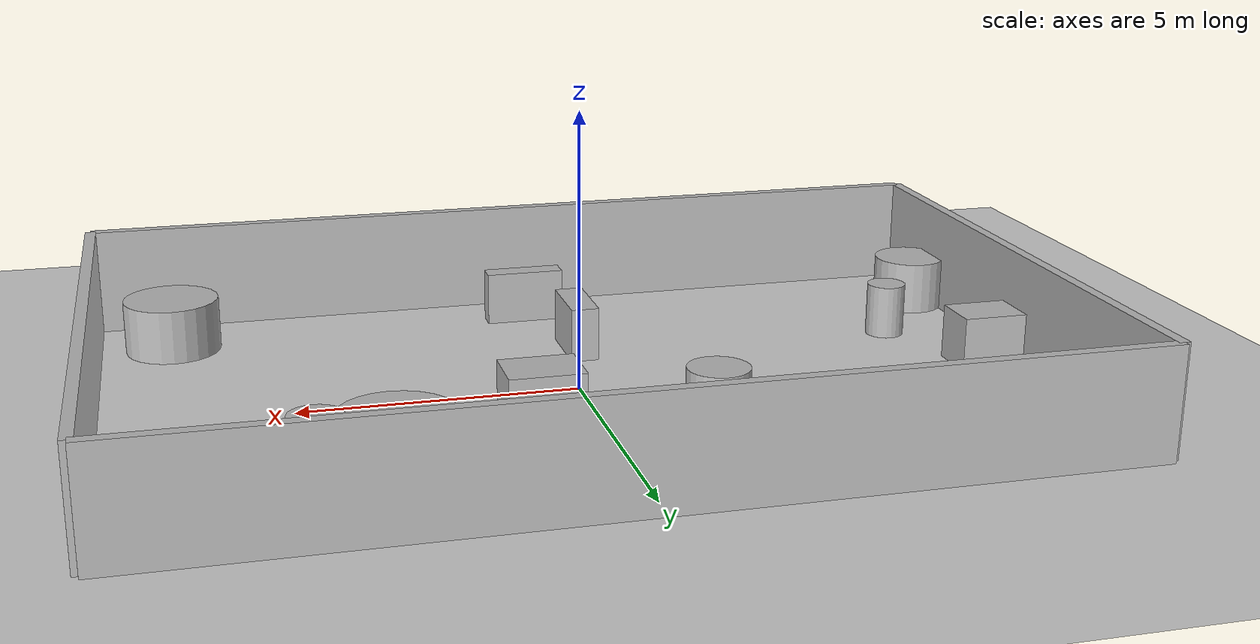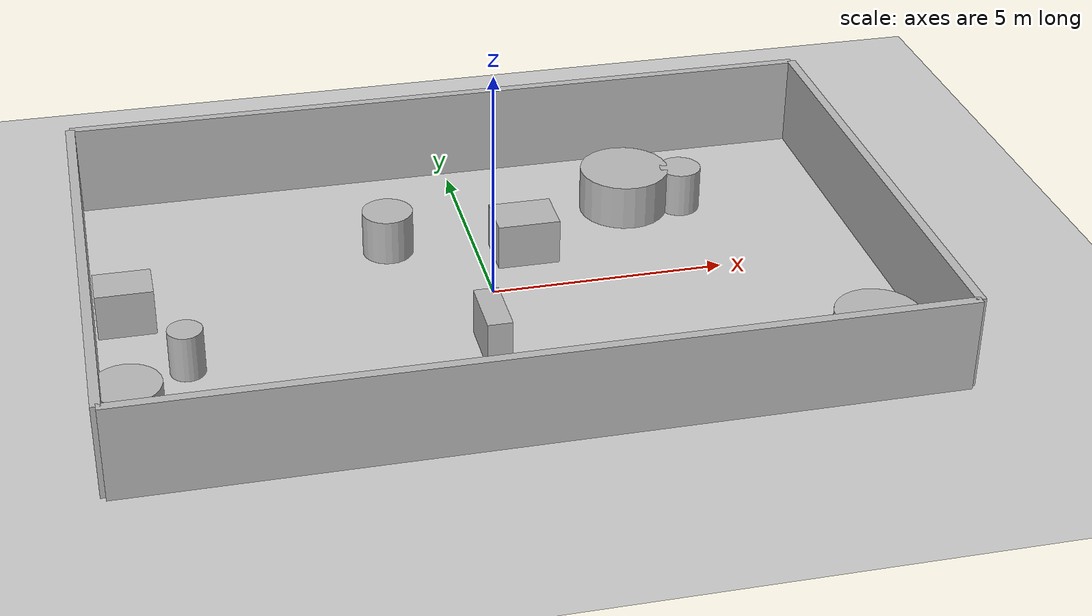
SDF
<?xml version="1.0"?>
<sdf version="1.6">
  <world name="env_53">

    <include><uri>model://ground_plane</uri></include>
    <include><uri>model://sun</uri></include>

    <!-- WALLS -->
    <model name="wall_north"><static>true</static><pose>0 5.4525361536929315 1 0 0 0</pose>
      <link name="link"><collision name="collision">
        <geometry><box><size>16.742143881782724 0.2 2</size></box></geometry>
      </collision><visual name="visual">
        <geometry><box><size>16.742143881782724 0.2 2</size></box></geometry>
      </visual></link>
    </model>

    <model name="wall_south"><static>true</static><pose>0 -5.4525361536929315 1 0 0 0</pose>
      <link name="link"><collision name="collision">
        <geometry><box><size>16.742143881782724 0.2 2</size></box></geometry>
      </collision><visual name="visual">
        <geometry><box><size>16.742143881782724 0.2 2</size></box></geometry>
      </visual></link>
    </model>

    <model name="wall_east"><static>true</static><pose>8.371071940891362 0 1 0 0 1.57</pose>
      <link name="link"><collision name="collision">
        <geometry><box><size>10.905072307385863 0.2 2</size></box></geometry>
      </collision><visual name="visual">
        <geometry><box><size>10.905072307385863 0.2 2</size></box></geometry>
      </visual></link>
    </model>

    <model name="wall_west"><static>true</static><pose>-8.371071940891362 0 1 0 0 1.57</pose>
      <link name="link"><collision name="collision">
        <geometry><box><size>10.905072307385863 0.2 2</size></box></geometry>
      </collision><visual name="visual">
        <geometry><box><size>10.905072307385863 0.2 2</size></box></geometry>
      </visual></link>
    </model>

    <!-- SENSOR -->

    <model name="lidar_sensor">
      <static>true</static>
      <pose>-3.893417773298096 3.9238841500364066 0.4 0 0 0</pose>
      <link name="link">
        <sensor name="lidar" type="ray">
          <pose>0 0 0 0 0 0</pose>
          <visualize>true</visualize>
          <always_on>true</always_on>
          <update_rate>10</update_rate>
          <ray>
            <scan><horizontal>
              <samples>90</samples>
              <resolution>1</resolution>
              <min_angle>-3.14159</min_angle>
              <max_angle>3.14159</max_angle>
            </horizontal></scan>
            <range><min>0.15</min><max>20.0</max><resolution>0.01</resolution></range>
          </ray>
          <plugin name="lidar_plugin" filename="liblidar_plugin.so"/>
        </sensor>
      </link>
    </model>

    <!-- OBSTACLES -->

    <model name="obstacle_0">
      <static>true</static>
      <pose>4.870773938615367 2.725130136189641 0.5 0 0 0</pose>
      <link name="link">
        <collision name="collision">
          <geometry><cylinder><radius>0.46</radius><length>1.0</length></cylinder></geometry>
        </collision>
        <visual name="visual">
          <geometry><cylinder><radius>0.46</radius><length>1.0</length></cylinder></geometry>
        </visual>
      </link>
    </model>

    <model name="obstacle_1">
      <static>true</static>
      <pose>-1.8714662950031062 2.132980539940644 0.5 0 0 0</pose>
      <link name="link">
        <collision name="collision">
          <geometry><cylinder><radius>0.55</radius><length>1.0</length></cylinder></geometry>
        </collision>
        <visual name="visual">
          <geometry><cylinder><radius>0.55</radius><length>1.0</length></cylinder></geometry>
        </visual>
      </link>
    </model>

    <model name="obstacle_2">
      <static>true</static>
      <pose>6.950515529508786 -3.968339153745955 0.5 0 0 0</pose>
      <link name="link">
        <collision name="collision">
          <geometry><cylinder><radius>0.88</radius><length>1.0</length></cylinder></geometry>
        </collision>
        <visual name="visual">
          <geometry><cylinder><radius>0.88</radius><length>1.0</length></cylinder></geometry>
        </visual>
      </link>
    </model>

    <model name="obstacle_3">
      <static>true</static>
      <pose>0.10896012806155841 -4.244183809306313 0.5 0 0 0</pose>
      <link name="link">
        <collision name="collision">
          <geometry><box><size>1.49 0.4 1.0</size></box></geometry>
        </collision>
        <visual name="visual">
          <geometry><box><size>1.49 0.4 1.0</size></box></geometry>
        </visual>
      </link>
    </model>

    <model name="obstacle_4">
      <static>true</static>
      <pose>-7.78796001602422 -3.341563096221469 0.5 0 0 0</pose>
      <link name="link">
        <collision name="collision">
          <geometry><cylinder><radius>0.69</radius><length>1.0</length></cylinder></geometry>
        </collision>
        <visual name="visual">
          <geometry><cylinder><radius>0.69</radius><length>1.0</length></cylinder></geometry>
        </visual>
      </link>
    </model>

    <model name="obstacle_5">
      <static>true</static>
      <pose>-7.629583822240753 0.3327355095166755 0.5 0 0 0</pose>
      <link name="link">
        <collision name="collision">
          <geometry><box><size>1.19 0.91 1.0</size></box></geometry>
        </collision>
        <visual name="visual">
          <geometry><box><size>1.19 0.91 1.0</size></box></geometry>
        </visual>
      </link>
    </model>

    <model name="obstacle_6">
      <static>true</static>
      <pose>3.635267966204159 2.9389569847367234 0.5 0 0 0</pose>
      <link name="link">
        <collision name="collision">
          <geometry><cylinder><radius>0.98</radius><length>1.0</length></cylinder></geometry>
        </collision>
        <visual name="visual">
          <geometry><cylinder><radius>0.98</radius><length>1.0</length></cylinder></geometry>
        </visual>
      </link>
    </model>

    <model name="obstacle_7">
      <static>true</static>
      <pose>0.9896880365413843 1.4076571479468392 0.5 0 0 0</pose>
      <link name="link">
        <collision name="collision">
          <geometry><box><size>1.34 1.03 1.0</size></box></geometry>
        </collision>
        <visual name="visual">
          <geometry><box><size>1.34 1.03 1.0</size></box></geometry>
        </visual>
      </link>
    </model>

    <model name="obstacle_8">
      <static>true</static>
      <pose>-0.4725676357927142 -2.1268973285682335 0.5 0 0 0</pose>
      <link name="link">
        <collision name="collision">
          <geometry><box><size>0.52 1.36 1.0</size></box></geometry>
        </collision>
        <visual name="visual">
          <geometry><box><size>0.52 1.36 1.0</size></box></geometry>
        </visual>
      </link>
    </model>

    <model name="obstacle_9">
      <static>true</static>
      <pose>-6.5479736652559355 -1.6704812172293964 0.5 0 0 0</pose>
      <link name="link">
        <collision name="collision">
          <geometry><cylinder><radius>0.36</radius><length>1.0</length></cylinder></geometry>
        </collision>
        <visual name="visual">
          <geometry><cylinder><radius>0.36</radius><length>1.0</length></cylinder></geometry>
        </visual>
      </link>
    </model>

  </world>
</sdf>
